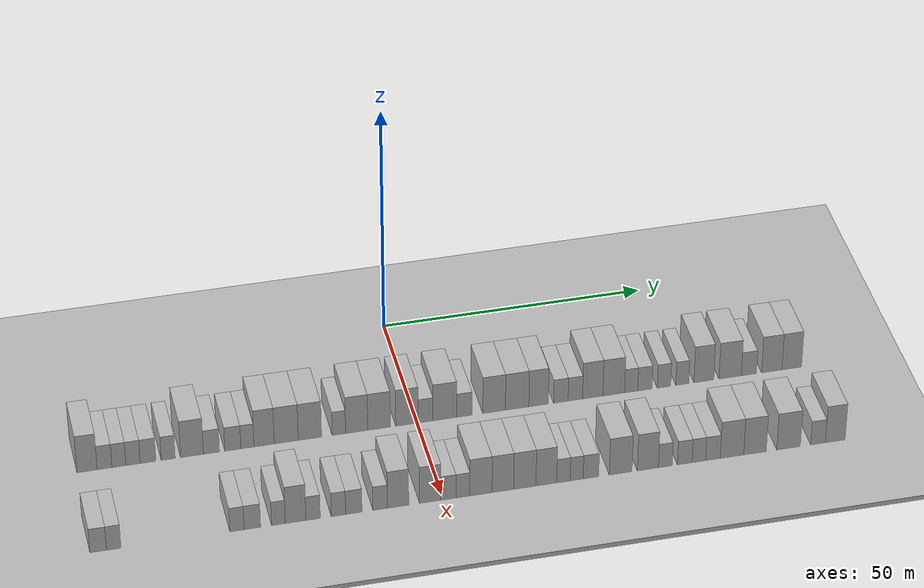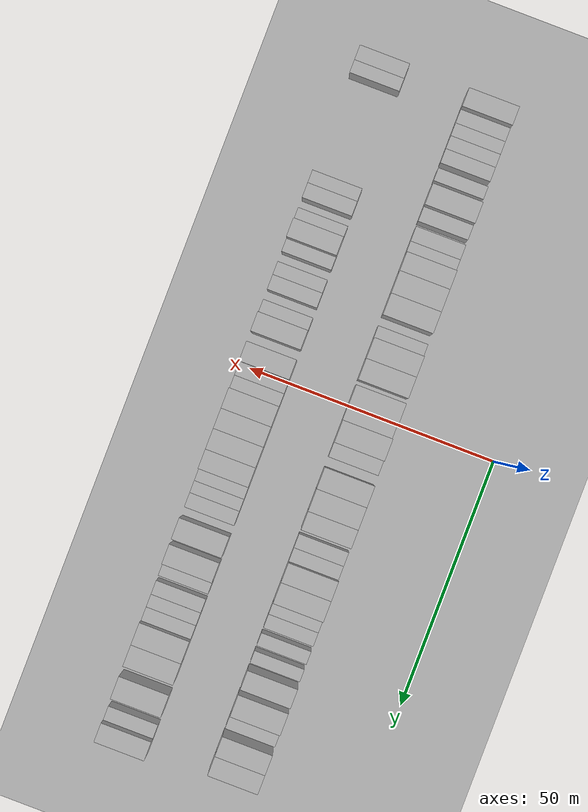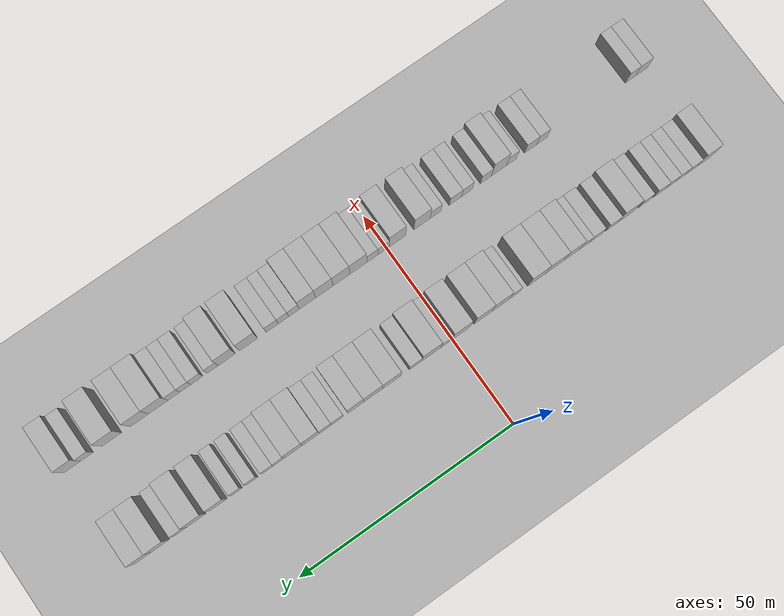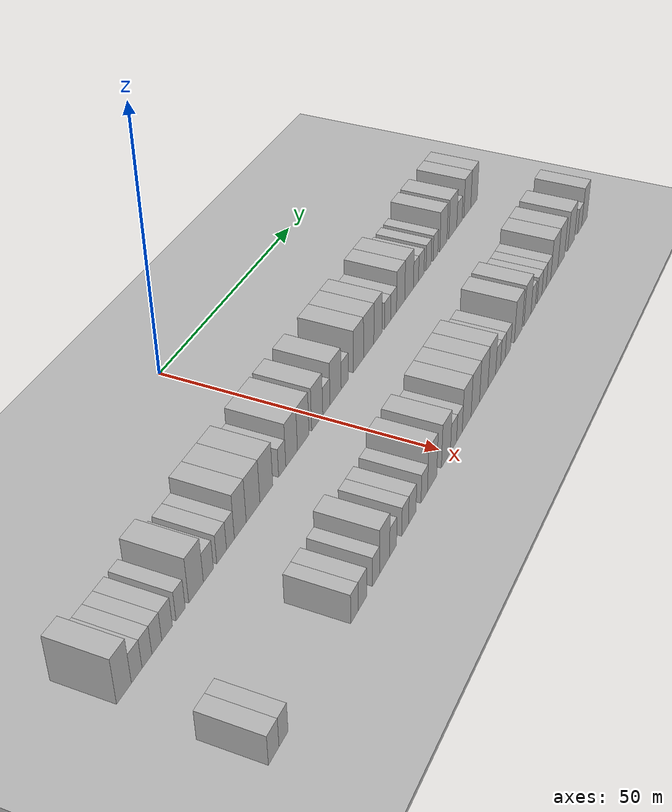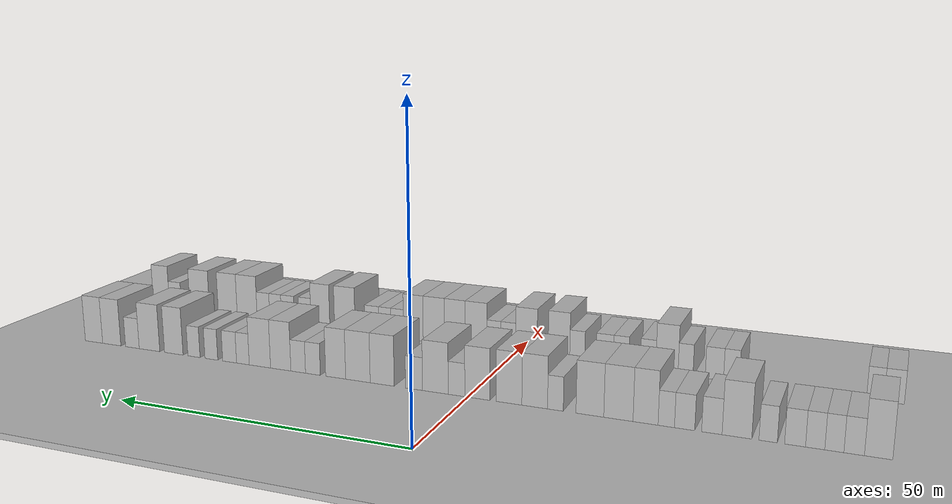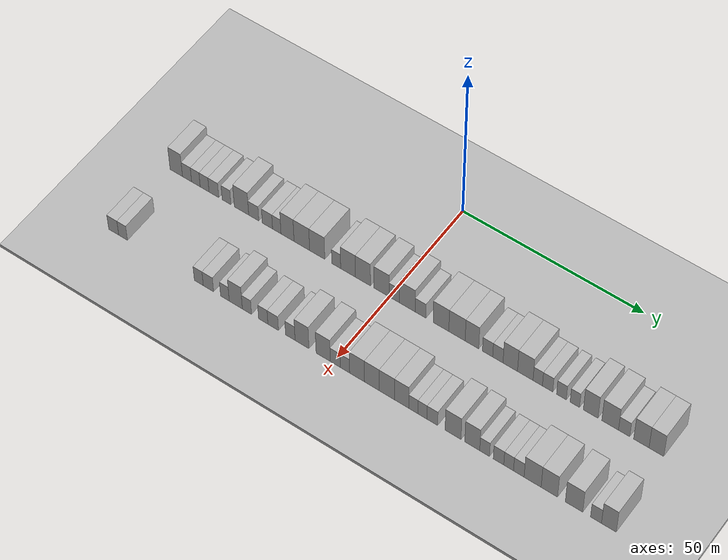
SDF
<sdf version="1.6">
 <world name="default">
  <include><name>ground_plane_1</name><uri>model://HANNAS_ground_plane</uri></include>
  <include>
   <name>ground_plane_2</name>
   <uri>model://HANNAS_ground_plane</uri>
   <pose>100 0 0  0 0 0</pose>
  </include>
  <model name="building_33">
   <static>1</static>
   <pose>25.0000 -61.4327 0 0.000000 0.000000 0.000000</pose>
   <link name="link">
    <pose>0 0 4.50 0 0 0</pose>
    <collision name="collision"><geometry><box><size>10.0000 3.7027 9.0000</size></box></geometry></collision>
    <visual name="visual">
     <cast_shadows>0</cast_shadows>
     <geometry><box><size>10.0000 3.7027 9.0000</size></box></geometry>
     <material>
      <script>
       <uri>model://HANNAS_wall/materials/scripts</uri>
       <uri>model://HANNAS_wall/materials/textures</uri>
       <name>vrc/HANNAS_wall</name>
      </script>
     </material>
    </visual>
   </link>
  </model>
  <model name="building_34">
   <static>1</static>
   <pose>25.0000 -58.2238 0 0.000000 0.000000 0.000000</pose>
   <link name="link">
    <pose>0 0 3.00 0 0 0</pose>
    <collision name="collision"><geometry><box><size>10.0000 2.7151 6.0000</size></box></geometry></collision>
    <visual name="visual">
     <cast_shadows>0</cast_shadows>
     <geometry><box><size>10.0000 2.7151 6.0000</size></box></geometry>
     <material>
      <script>
       <uri>model://HANNAS_wall/materials/scripts</uri>
       <uri>model://HANNAS_wall/materials/textures</uri>
       <name>vrc/HANNAS_wall</name>
      </script>
     </material>
    </visual>
   </link>
  </model>
  <model name="building_35">
   <static>1</static>
   <pose>25.0000 -55.5876 0 0.000000 0.000000 0.000000</pose>
   <link name="link">
    <pose>0 0 3.00 0 0 0</pose>
    <collision name="collision"><geometry><box><size>10.0000 2.5574 6.0000</size></box></geometry></collision>
    <visual name="visual">
     <cast_shadows>0</cast_shadows>
     <geometry><box><size>10.0000 2.5574 6.0000</size></box></geometry>
     <material>
      <script>
       <uri>model://HANNAS_wall/materials/scripts</uri>
       <uri>model://HANNAS_wall/materials/textures</uri>
       <name>vrc/HANNAS_wall</name>
      </script>
     </material>
    </visual>
   </link>
  </model>
  <model name="building_36">
   <static>1</static>
   <pose>25.0000 -53.0013 0 0.000000 0.000000 0.000000</pose>
   <link name="link">
    <pose>0 0 3.00 0 0 0</pose>
    <collision name="collision"><geometry><box><size>10.0000 2.6151 6.0000</size></box></geometry></collision>
    <visual name="visual">
     <cast_shadows>0</cast_shadows>
     <geometry><box><size>10.0000 2.6151 6.0000</size></box></geometry>
     <material>
      <script>
       <uri>model://HANNAS_wall/materials/scripts</uri>
       <uri>model://HANNAS_wall/materials/textures</uri>
       <name>vrc/HANNAS_wall</name>
      </script>
     </material>
    </visual>
   </link>
  </model>
  <model name="building_37">
   <static>1</static>
   <pose>25.0000 -50.2593 0 0.000000 0.000000 0.000000</pose>
   <link name="link">
    <pose>0 0 3.00 0 0 0</pose>
    <collision name="collision"><geometry><box><size>10.0000 2.8688 6.0000</size></box></geometry></collision>
    <visual name="visual">
     <cast_shadows>0</cast_shadows>
     <geometry><box><size>10.0000 2.8688 6.0000</size></box></geometry>
     <material>
      <script>
       <uri>model://HANNAS_wall/materials/scripts</uri>
       <uri>model://HANNAS_wall/materials/textures</uri>
       <name>vrc/HANNAS_wall</name>
      </script>
     </material>
    </visual>
   </link>
  </model>
  <model name="building_38">
   <static>1</static>
   <pose>25.0000 -46.5412 0 0.000000 0.000000 0.000000</pose>
   <link name="link">
    <pose>0 0 3.00 0 0 0</pose>
    <collision name="collision"><geometry><box><size>10.0000 2.5675 6.0000</size></box></geometry></collision>
    <visual name="visual">
     <cast_shadows>0</cast_shadows>
     <geometry><box><size>10.0000 2.5675 6.0000</size></box></geometry>
     <material>
      <script>
       <uri>model://HANNAS_wall/materials/scripts</uri>
       <uri>model://HANNAS_wall/materials/textures</uri>
       <name>vrc/HANNAS_wall</name>
      </script>
     </material>
    </visual>
   </link>
  </model>
  <model name="building_39">
   <static>1</static>
   <pose>25.0000 -42.1483 0 0.000000 0.000000 0.000000</pose>
   <link name="link">
    <pose>0 0 4.50 0 0 0</pose>
    <collision name="collision"><geometry><box><size>10.0000 4.2184 9.0000</size></box></geometry></collision>
    <visual name="visual">
     <cast_shadows>0</cast_shadows>
     <geometry><box><size>10.0000 4.2184 9.0000</size></box></geometry>
     <material>
      <script>
       <uri>model://HANNAS_wall/materials/scripts</uri>
       <uri>model://HANNAS_wall/materials/textures</uri>
       <name>vrc/HANNAS_wall</name>
      </script>
     </material>
    </visual>
   </link>
  </model>
  <model name="building_40">
   <static>1</static>
   <pose>25.0000 -38.5617 0 0.000000 0.000000 0.000000</pose>
   <link name="link">
    <pose>0 0 3.00 0 0 0</pose>
    <collision name="collision"><geometry><box><size>10.0000 2.9548 6.0000</size></box></geometry></collision>
    <visual name="visual">
     <cast_shadows>0</cast_shadows>
     <geometry><box><size>10.0000 2.9548 6.0000</size></box></geometry>
     <material>
      <script>
       <uri>model://HANNAS_wall/materials/scripts</uri>
       <uri>model://HANNAS_wall/materials/textures</uri>
       <name>vrc/HANNAS_wall</name>
      </script>
     </material>
    </visual>
   </link>
  </model>
  <model name="building_41">
   <static>1</static>
   <pose>25.0000 -34.5960 0 0.000000 0.000000 0.000000</pose>
   <link name="link">
    <pose>0 0 3.00 0 0 0</pose>
    <collision name="collision"><geometry><box><size>10.0000 2.9766 6.0000</size></box></geometry></collision>
    <visual name="visual">
     <cast_shadows>0</cast_shadows>
     <geometry><box><size>10.0000 2.9766 6.0000</size></box></geometry>
     <material>
      <script>
       <uri>model://HANNAS_wall/materials/scripts</uri>
       <uri>model://HANNAS_wall/materials/textures</uri>
       <name>vrc/HANNAS_wall</name>
      </script>
     </material>
    </visual>
   </link>
  </model>
  <model name="building_42">
   <static>1</static>
   <pose>25.0000 -31.8885 0 0.000000 0.000000 0.000000</pose>
   <link name="link">
    <pose>0 0 3.00 0 0 0</pose>
    <collision name="collision"><geometry><box><size>10.0000 2.4384 6.0000</size></box></geometry></collision>
    <visual name="visual">
     <cast_shadows>0</cast_shadows>
     <geometry><box><size>10.0000 2.4384 6.0000</size></box></geometry>
     <material>
      <script>
       <uri>model://HANNAS_wall/materials/scripts</uri>
       <uri>model://HANNAS_wall/materials/textures</uri>
       <name>vrc/HANNAS_wall</name>
      </script>
     </material>
    </visual>
   </link>
  </model>
  <model name="building_43">
   <static>1</static>
   <pose>25.0000 -28.7866 0 0.000000 0.000000 0.000000</pose>
   <link name="link">
    <pose>0 0 4.50 0 0 0</pose>
    <collision name="collision"><geometry><box><size>10.0000 3.7654 9.0000</size></box></geometry></collision>
    <visual name="visual">
     <cast_shadows>0</cast_shadows>
     <geometry><box><size>10.0000 3.7654 9.0000</size></box></geometry>
     <material>
      <script>
       <uri>model://HANNAS_wall/materials/scripts</uri>
       <uri>model://HANNAS_wall/materials/textures</uri>
       <name>vrc/HANNAS_wall</name>
      </script>
     </material>
    </visual>
   </link>
  </model>
  <model name="building_44">
   <static>1</static>
   <pose>25.0000 -24.6649 0 0.000000 0.000000 0.000000</pose>
   <link name="link">
    <pose>0 0 4.50 0 0 0</pose>
    <collision name="collision"><geometry><box><size>10.0000 4.4779 9.0000</size></box></geometry></collision>
    <visual name="visual">
     <cast_shadows>0</cast_shadows>
     <geometry><box><size>10.0000 4.4779 9.0000</size></box></geometry>
     <material>
      <script>
       <uri>model://HANNAS_wall/materials/scripts</uri>
       <uri>model://HANNAS_wall/materials/textures</uri>
       <name>vrc/HANNAS_wall</name>
      </script>
     </material>
    </visual>
   </link>
  </model>
  <model name="building_45">
   <static>1</static>
   <pose>25.0000 -20.2596 0 0.000000 0.000000 0.000000</pose>
   <link name="link">
    <pose>0 0 4.50 0 0 0</pose>
    <collision name="collision"><geometry><box><size>10.0000 4.3327 9.0000</size></box></geometry></collision>
    <visual name="visual">
     <cast_shadows>0</cast_shadows>
     <geometry><box><size>10.0000 4.3327 9.0000</size></box></geometry>
     <material>
      <script>
       <uri>model://HANNAS_wall/materials/scripts</uri>
       <uri>model://HANNAS_wall/materials/textures</uri>
       <name>vrc/HANNAS_wall</name>
      </script>
     </material>
    </visual>
   </link>
  </model>
  <model name="building_46">
   <static>1</static>
   <pose>25.0000 -14.8365 0 0.000000 0.000000 0.000000</pose>
   <link name="link">
    <pose>0 0 3.00 0 0 0</pose>
    <collision name="collision"><geometry><box><size>10.0000 2.5137 6.0000</size></box></geometry></collision>
    <visual name="visual">
     <cast_shadows>0</cast_shadows>
     <geometry><box><size>10.0000 2.5137 6.0000</size></box></geometry>
     <material>
      <script>
       <uri>model://HANNAS_wall/materials/scripts</uri>
       <uri>model://HANNAS_wall/materials/textures</uri>
       <name>vrc/HANNAS_wall</name>
      </script>
     </material>
    </visual>
   </link>
  </model>
  <model name="building_47">
   <static>1</static>
   <pose>25.0000 -11.5016 0 0.000000 0.000000 0.000000</pose>
   <link name="link">
    <pose>0 0 4.50 0 0 0</pose>
    <collision name="collision"><geometry><box><size>10.0000 4.1561 9.0000</size></box></geometry></collision>
    <visual name="visual">
     <cast_shadows>0</cast_shadows>
     <geometry><box><size>10.0000 4.1561 9.0000</size></box></geometry>
     <material>
      <script>
       <uri>model://HANNAS_wall/materials/scripts</uri>
       <uri>model://HANNAS_wall/materials/textures</uri>
       <name>vrc/HANNAS_wall</name>
      </script>
     </material>
    </visual>
   </link>
  </model>
  <model name="building_48">
   <static>1</static>
   <pose>25.0000 -7.2964 0 0.000000 0.000000 0.000000</pose>
   <link name="link">
    <pose>0 0 4.50 0 0 0</pose>
    <collision name="collision"><geometry><box><size>10.0000 4.2544 9.0000</size></box></geometry></collision>
    <visual name="visual">
     <cast_shadows>0</cast_shadows>
     <geometry><box><size>10.0000 4.2544 9.0000</size></box></geometry>
     <material>
      <script>
       <uri>model://HANNAS_wall/materials/scripts</uri>
       <uri>model://HANNAS_wall/materials/textures</uri>
       <name>vrc/HANNAS_wall</name>
      </script>
     </material>
    </visual>
   </link>
  </model>
  <model name="building_49">
   <static>1</static>
   <pose>25.0000 -2.0602 0 0.000000 0.000000 0.000000</pose>
   <link name="link">
    <pose>0 0 4.50 0 0 0</pose>
    <collision name="collision"><geometry><box><size>10.0000 4.2179 9.0000</size></box></geometry></collision>
    <visual name="visual">
     <cast_shadows>0</cast_shadows>
     <geometry><box><size>10.0000 4.2179 9.0000</size></box></geometry>
     <material>
      <script>
       <uri>model://HANNAS_wall/materials/scripts</uri>
       <uri>model://HANNAS_wall/materials/textures</uri>
       <name>vrc/HANNAS_wall</name>
      </script>
     </material>
    </visual>
   </link>
  </model>
  <model name="building_50">
   <static>1</static>
   <pose>25.0000 1.4626 0 0.000000 0.000000 0.000000</pose>
   <link name="link">
    <pose>0 0 3.00 0 0 0</pose>
    <collision name="collision"><geometry><box><size>10.0000 2.8276 6.0000</size></box></geometry></collision>
    <visual name="visual">
     <cast_shadows>0</cast_shadows>
     <geometry><box><size>10.0000 2.8276 6.0000</size></box></geometry>
     <material>
      <script>
       <uri>model://HANNAS_wall/materials/scripts</uri>
       <uri>model://HANNAS_wall/materials/textures</uri>
       <name>vrc/HANNAS_wall</name>
      </script>
     </material>
    </visual>
   </link>
  </model>
  <model name="building_51">
   <static>1</static>
   <pose>25.0000 5.0964 0 0.000000 0.000000 0.000000</pose>
   <link name="link">
    <pose>0 0 4.50 0 0 0</pose>
    <collision name="collision"><geometry><box><size>10.0000 4.4400 9.0000</size></box></geometry></collision>
    <visual name="visual">
     <cast_shadows>0</cast_shadows>
     <geometry><box><size>10.0000 4.4400 9.0000</size></box></geometry>
     <material>
      <script>
       <uri>model://HANNAS_wall/materials/scripts</uri>
       <uri>model://HANNAS_wall/materials/textures</uri>
       <name>vrc/HANNAS_wall</name>
      </script>
     </material>
    </visual>
   </link>
  </model>
  <model name="building_52">
   <static>1</static>
   <pose>25.0000 8.7997 0 0.000000 0.000000 0.000000</pose>
   <link name="link">
    <pose>0 0 3.00 0 0 0</pose>
    <collision name="collision"><geometry><box><size>10.0000 2.9665 6.0000</size></box></geometry></collision>
    <visual name="visual">
     <cast_shadows>0</cast_shadows>
     <geometry><box><size>10.0000 2.9665 6.0000</size></box></geometry>
     <material>
      <script>
       <uri>model://HANNAS_wall/materials/scripts</uri>
       <uri>model://HANNAS_wall/materials/textures</uri>
       <name>vrc/HANNAS_wall</name>
      </script>
     </material>
    </visual>
   </link>
  </model>
  <model name="building_53">
   <static>1</static>
   <pose>25.0000 14.4339 0 0.000000 0.000000 0.000000</pose>
   <link name="link">
    <pose>0 0 4.50 0 0 0</pose>
    <collision name="collision"><geometry><box><size>10.0000 4.3020 9.0000</size></box></geometry></collision>
    <visual name="visual">
     <cast_shadows>0</cast_shadows>
     <geometry><box><size>10.0000 4.3020 9.0000</size></box></geometry>
     <material>
      <script>
       <uri>model://HANNAS_wall/materials/scripts</uri>
       <uri>model://HANNAS_wall/materials/textures</uri>
       <name>vrc/HANNAS_wall</name>
      </script>
     </material>
    </visual>
   </link>
  </model>
  <model name="building_54">
   <static>1</static>
   <pose>25.0000 18.8188 0 0.000000 0.000000 0.000000</pose>
   <link name="link">
    <pose>0 0 4.50 0 0 0</pose>
    <collision name="collision"><geometry><box><size>10.0000 4.4679 9.0000</size></box></geometry></collision>
    <visual name="visual">
     <cast_shadows>0</cast_shadows>
     <geometry><box><size>10.0000 4.4679 9.0000</size></box></geometry>
     <material>
      <script>
       <uri>model://HANNAS_wall/materials/scripts</uri>
       <uri>model://HANNAS_wall/materials/textures</uri>
       <name>vrc/HANNAS_wall</name>
      </script>
     </material>
    </visual>
   </link>
  </model>
  <model name="building_55">
   <static>1</static>
   <pose>25.0000 22.9044 0 0.000000 0.000000 0.000000</pose>
   <link name="link">
    <pose>0 0 4.50 0 0 0</pose>
    <collision name="collision"><geometry><box><size>10.0000 3.7032 9.0000</size></box></geometry></collision>
    <visual name="visual">
     <cast_shadows>0</cast_shadows>
     <geometry><box><size>10.0000 3.7032 9.0000</size></box></geometry>
     <material>
      <script>
       <uri>model://HANNAS_wall/materials/scripts</uri>
       <uri>model://HANNAS_wall/materials/textures</uri>
       <name>vrc/HANNAS_wall</name>
      </script>
     </material>
    </visual>
   </link>
  </model>
  <model name="building_56">
   <static>1</static>
   <pose>25.0000 27.1491 0 0.000000 0.000000 0.000000</pose>
   <link name="link">
    <pose>0 0 3.00 0 0 0</pose>
    <collision name="collision"><geometry><box><size>10.0000 2.7863 6.0000</size></box></geometry></collision>
    <visual name="visual">
     <cast_shadows>0</cast_shadows>
     <geometry><box><size>10.0000 2.7863 6.0000</size></box></geometry>
     <material>
      <script>
       <uri>model://HANNAS_wall/materials/scripts</uri>
       <uri>model://HANNAS_wall/materials/textures</uri>
       <name>vrc/HANNAS_wall</name>
      </script>
     </material>
    </visual>
   </link>
  </model>
  <model name="building_57">
   <static>1</static>
   <pose>25.0000 29.9320 0 0.000000 0.000000 0.000000</pose>
   <link name="link">
    <pose>0 0 3.00 0 0 0</pose>
    <collision name="collision"><geometry><box><size>10.0000 2.7795 6.0000</size></box></geometry></collision>
    <visual name="visual">
     <cast_shadows>0</cast_shadows>
     <geometry><box><size>10.0000 2.7795 6.0000</size></box></geometry>
     <material>
      <script>
       <uri>model://HANNAS_wall/materials/scripts</uri>
       <uri>model://HANNAS_wall/materials/textures</uri>
       <name>vrc/HANNAS_wall</name>
      </script>
     </material>
    </visual>
   </link>
  </model>
  <model name="building_58">
   <static>1</static>
   <pose>25.0000 33.2780 0 0.000000 0.000000 0.000000</pose>
   <link name="link">
    <pose>0 0 4.50 0 0 0</pose>
    <collision name="collision"><geometry><box><size>10.0000 3.9124 9.0000</size></box></geometry></collision>
    <visual name="visual">
     <cast_shadows>0</cast_shadows>
     <geometry><box><size>10.0000 3.9124 9.0000</size></box></geometry>
     <material>
      <script>
       <uri>model://HANNAS_wall/materials/scripts</uri>
       <uri>model://HANNAS_wall/materials/textures</uri>
       <name>vrc/HANNAS_wall</name>
      </script>
     </material>
    </visual>
   </link>
  </model>
  <model name="building_59">
   <static>1</static>
   <pose>25.0000 37.3160 0 0.000000 0.000000 0.000000</pose>
   <link name="link">
    <pose>0 0 4.50 0 0 0</pose>
    <collision name="collision"><geometry><box><size>10.0000 4.1636 9.0000</size></box></geometry></collision>
    <visual name="visual">
     <cast_shadows>0</cast_shadows>
     <geometry><box><size>10.0000 4.1636 9.0000</size></box></geometry>
     <material>
      <script>
       <uri>model://HANNAS_wall/materials/scripts</uri>
       <uri>model://HANNAS_wall/materials/textures</uri>
       <name>vrc/HANNAS_wall</name>
      </script>
     </material>
    </visual>
   </link>
  </model>
  <model name="building_60">
   <static>1</static>
   <pose>25.0000 40.6521 0 0.000000 0.000000 0.000000</pose>
   <link name="link">
    <pose>0 0 3.00 0 0 0</pose>
    <collision name="collision"><geometry><box><size>10.0000 2.5086 6.0000</size></box></geometry></collision>
    <visual name="visual">
     <cast_shadows>0</cast_shadows>
     <geometry><box><size>10.0000 2.5086 6.0000</size></box></geometry>
     <material>
      <script>
       <uri>model://HANNAS_wall/materials/scripts</uri>
       <uri>model://HANNAS_wall/materials/textures</uri>
       <name>vrc/HANNAS_wall</name>
      </script>
     </material>
    </visual>
   </link>
  </model>
  <model name="building_61">
   <static>1</static>
   <pose>25.0000 43.2868 0 0.000000 0.000000 0.000000</pose>
   <link name="link">
    <pose>0 0 3.00 0 0 0</pose>
    <collision name="collision"><geometry><box><size>10.0000 2.7609 6.0000</size></box></geometry></collision>
    <visual name="visual">
     <cast_shadows>0</cast_shadows>
     <geometry><box><size>10.0000 2.7609 6.0000</size></box></geometry>
     <material>
      <script>
       <uri>model://HANNAS_wall/materials/scripts</uri>
       <uri>model://HANNAS_wall/materials/textures</uri>
       <name>vrc/HANNAS_wall</name>
      </script>
     </material>
    </visual>
   </link>
  </model>
  <model name="building_62">
   <static>1</static>
   <pose>25.0000 46.9627 0 0.000000 0.000000 0.000000</pose>
   <link name="link">
    <pose>0 0 3.00 0 0 0</pose>
    <collision name="collision"><geometry><box><size>10.0000 2.5908 6.0000</size></box></geometry></collision>
    <visual name="visual">
     <cast_shadows>0</cast_shadows>
     <geometry><box><size>10.0000 2.5908 6.0000</size></box></geometry>
     <material>
      <script>
       <uri>model://HANNAS_wall/materials/scripts</uri>
       <uri>model://HANNAS_wall/materials/textures</uri>
       <name>vrc/HANNAS_wall</name>
      </script>
     </material>
    </visual>
   </link>
  </model>
  <model name="building_63">
   <static>1</static>
   <pose>25.0000 50.5032 0 0.000000 0.000000 0.000000</pose>
   <link name="link">
    <pose>0 0 3.00 0 0 0</pose>
    <collision name="collision"><geometry><box><size>10.0000 2.4901 6.0000</size></box></geometry></collision>
    <visual name="visual">
     <cast_shadows>0</cast_shadows>
     <geometry><box><size>10.0000 2.4901 6.0000</size></box></geometry>
     <material>
      <script>
       <uri>model://HANNAS_wall/materials/scripts</uri>
       <uri>model://HANNAS_wall/materials/textures</uri>
       <name>vrc/HANNAS_wall</name>
      </script>
     </material>
    </visual>
   </link>
  </model>
  <model name="building_64">
   <static>1</static>
   <pose>25.0000 54.6744 0 0.000000 0.000000 0.000000</pose>
   <link name="link">
    <pose>0 0 4.50 0 0 0</pose>
    <collision name="collision"><geometry><box><size>10.0000 3.8524 9.0000</size></box></geometry></collision>
    <visual name="visual">
     <cast_shadows>0</cast_shadows>
     <geometry><box><size>10.0000 3.8524 9.0000</size></box></geometry>
     <material>
      <script>
       <uri>model://HANNAS_wall/materials/scripts</uri>
       <uri>model://HANNAS_wall/materials/textures</uri>
       <name>vrc/HANNAS_wall</name>
      </script>
     </material>
    </visual>
   </link>
  </model>
  <model name="building_65">
   <static>1</static>
   <pose>25.0000 59.7795 0 0.000000 0.000000 0.000000</pose>
   <link name="link">
    <pose>0 0 4.50 0 0 0</pose>
    <collision name="collision"><geometry><box><size>10.0000 4.3577 9.0000</size></box></geometry></collision>
    <visual name="visual">
     <cast_shadows>0</cast_shadows>
     <geometry><box><size>10.0000 4.3577 9.0000</size></box></geometry>
     <material>
      <script>
       <uri>model://HANNAS_wall/materials/scripts</uri>
       <uri>model://HANNAS_wall/materials/textures</uri>
       <name>vrc/HANNAS_wall</name>
      </script>
     </material>
    </visual>
   </link>
  </model>
  <model name="building_66">
   <static>1</static>
   <pose>25.0000 63.4287 0 0.000000 0.000000 0.000000</pose>
   <link name="link">
    <pose>0 0 3.00 0 0 0</pose>
    <collision name="collision"><geometry><box><size>10.0000 2.9407 6.0000</size></box></geometry></collision>
    <visual name="visual">
     <cast_shadows>0</cast_shadows>
     <geometry><box><size>10.0000 2.9407 6.0000</size></box></geometry>
     <material>
      <script>
       <uri>model://HANNAS_wall/materials/scripts</uri>
       <uri>model://HANNAS_wall/materials/textures</uri>
       <name>vrc/HANNAS_wall</name>
      </script>
     </material>
    </visual>
   </link>
  </model>
  <model name="building_67">
   <static>1</static>
   <pose>25.0000 67.8861 0 0.000000 0.000000 0.000000</pose>
   <link name="link">
    <pose>0 0 4.50 0 0 0</pose>
    <collision name="collision"><geometry><box><size>10.0000 3.9743 9.0000</size></box></geometry></collision>
    <visual name="visual">
     <cast_shadows>0</cast_shadows>
     <geometry><box><size>10.0000 3.9743 9.0000</size></box></geometry>
     <material>
      <script>
       <uri>model://HANNAS_wall/materials/scripts</uri>
       <uri>model://HANNAS_wall/materials/textures</uri>
       <name>vrc/HANNAS_wall</name>
      </script>
     </material>
    </visual>
   </link>
  </model>
  <model name="building_68">
   <static>1</static>
   <pose>25.0000 71.7823 0 0.000000 0.000000 0.000000</pose>
   <link name="link">
    <pose>0 0 4.50 0 0 0</pose>
    <collision name="collision"><geometry><box><size>10.0000 3.8181 9.0000</size></box></geometry></collision>
    <visual name="visual">
     <cast_shadows>0</cast_shadows>
     <geometry><box><size>10.0000 3.8181 9.0000</size></box></geometry>
     <material>
      <script>
       <uri>model://HANNAS_wall/materials/scripts</uri>
       <uri>model://HANNAS_wall/materials/textures</uri>
       <name>vrc/HANNAS_wall</name>
      </script>
     </material>
    </visual>
   </link>
  </model>
  <model name="building_140">
   <static>1</static>
   <pose>47.0000 -62.6905 0 0.000000 0.000000 0.000000</pose>
   <link name="link">
    <pose>0 0 3.00 0 0 0</pose>
    <collision name="collision"><geometry><box><size>10.0000 2.9683 6.0000</size></box></geometry></collision>
    <visual name="visual">
     <cast_shadows>0</cast_shadows>
     <geometry><box><size>10.0000 2.9683 6.0000</size></box></geometry>
     <material>
      <script>
       <uri>model://HANNAS_wall/materials/scripts</uri>
       <uri>model://HANNAS_wall/materials/textures</uri>
       <name>vrc/HANNAS_wall</name>
      </script>
     </material>
    </visual>
   </link>
  </model>
  <model name="building_141">
   <static>1</static>
   <pose>47.0000 -59.9137 0 0.000000 0.000000 0.000000</pose>
   <link name="link">
    <pose>0 0 3.00 0 0 0</pose>
    <collision name="collision"><geometry><box><size>10.0000 2.5853 6.0000</size></box></geometry></collision>
    <visual name="visual">
     <cast_shadows>0</cast_shadows>
     <geometry><box><size>10.0000 2.5853 6.0000</size></box></geometry>
     <material>
      <script>
       <uri>model://HANNAS_wall/materials/scripts</uri>
       <uri>model://HANNAS_wall/materials/textures</uri>
       <name>vrc/HANNAS_wall</name>
      </script>
     </material>
    </visual>
   </link>
  </model>
  <model name="building_142">
   <static>1</static>
   <pose>47.0000 -37.7682 0 0.000000 0.000000 0.000000</pose>
   <link name="link">
    <pose>0 0 3.00 0 0 0</pose>
    <collision name="collision"><geometry><box><size>10.0000 2.5685 6.0000</size></box></geometry></collision>
    <visual name="visual">
     <cast_shadows>0</cast_shadows>
     <geometry><box><size>10.0000 2.5685 6.0000</size></box></geometry>
     <material>
      <script>
       <uri>model://HANNAS_wall/materials/scripts</uri>
       <uri>model://HANNAS_wall/materials/textures</uri>
       <name>vrc/HANNAS_wall</name>
      </script>
     </material>
    </visual>
   </link>
  </model>
  <model name="building_143">
   <static>1</static>
   <pose>47.0000 -34.9933 0 0.000000 0.000000 0.000000</pose>
   <link name="link">
    <pose>0 0 3.00 0 0 0</pose>
    <collision name="collision"><geometry><box><size>10.0000 2.9813 6.0000</size></box></geometry></collision>
    <visual name="visual">
     <cast_shadows>0</cast_shadows>
     <geometry><box><size>10.0000 2.9813 6.0000</size></box></geometry>
     <material>
      <script>
       <uri>model://HANNAS_wall/materials/scripts</uri>
       <uri>model://HANNAS_wall/materials/textures</uri>
       <name>vrc/HANNAS_wall</name>
      </script>
     </material>
    </visual>
   </link>
  </model>
  <model name="building_144">
   <static>1</static>
   <pose>47.0000 -30.2642 0 0.000000 0.000000 0.000000</pose>
   <link name="link">
    <pose>0 0 3.00 0 0 0</pose>
    <collision name="collision"><geometry><box><size>10.0000 2.4768 6.0000</size></box></geometry></collision>
    <visual name="visual">
     <cast_shadows>0</cast_shadows>
     <geometry><box><size>10.0000 2.4768 6.0000</size></box></geometry>
     <material>
      <script>
       <uri>model://HANNAS_wall/materials/scripts</uri>
       <uri>model://HANNAS_wall/materials/textures</uri>
       <name>vrc/HANNAS_wall</name>
      </script>
     </material>
    </visual>
   </link>
  </model>
  <model name="building_145">
   <static>1</static>
   <pose>47.0000 -27.1526 0 0.000000 0.000000 0.000000</pose>
   <link name="link">
    <pose>0 0 4.50 0 0 0</pose>
    <collision name="collision"><geometry><box><size>10.0000 3.7464 9.0000</size></box></geometry></collision>
    <visual name="visual">
     <cast_shadows>0</cast_shadows>
     <geometry><box><size>10.0000 3.7464 9.0000</size></box></geometry>
     <material>
      <script>
       <uri>model://HANNAS_wall/materials/scripts</uri>
       <uri>model://HANNAS_wall/materials/textures</uri>
       <name>vrc/HANNAS_wall</name>
      </script>
     </material>
    </visual>
   </link>
  </model>
  <model name="building_146">
   <static>1</static>
   <pose>47.0000 -23.9708 0 0.000000 0.000000 0.000000</pose>
   <link name="link">
    <pose>0 0 3.00 0 0 0</pose>
    <collision name="collision"><geometry><box><size>10.0000 2.6172 6.0000</size></box></geometry></collision>
    <visual name="visual">
     <cast_shadows>0</cast_shadows>
     <geometry><box><size>10.0000 2.6172 6.0000</size></box></geometry>
     <material>
      <script>
       <uri>model://HANNAS_wall/materials/scripts</uri>
       <uri>model://HANNAS_wall/materials/textures</uri>
       <name>vrc/HANNAS_wall</name>
      </script>
     </material>
    </visual>
   </link>
  </model>
  <model name="building_147">
   <static>1</static>
   <pose>47.0000 -19.3474 0 0.000000 0.000000 0.000000</pose>
   <link name="link">
    <pose>0 0 3.00 0 0 0</pose>
    <collision name="collision"><geometry><box><size>10.0000 2.6298 6.0000</size></box></geometry></collision>
    <visual name="visual">
     <cast_shadows>0</cast_shadows>
     <geometry><box><size>10.0000 2.6298 6.0000</size></box></geometry>
     <material>
      <script>
       <uri>model://HANNAS_wall/materials/scripts</uri>
       <uri>model://HANNAS_wall/materials/textures</uri>
       <name>vrc/HANNAS_wall</name>
      </script>
     </material>
    </visual>
   </link>
  </model>
  <model name="building_148">
   <static>1</static>
   <pose>47.0000 -16.5390 0 0.000000 0.000000 0.000000</pose>
   <link name="link">
    <pose>0 0 3.00 0 0 0</pose>
    <collision name="collision"><geometry><box><size>10.0000 2.9870 6.0000</size></box></geometry></collision>
    <visual name="visual">
     <cast_shadows>0</cast_shadows>
     <geometry><box><size>10.0000 2.9870 6.0000</size></box></geometry>
     <material>
      <script>
       <uri>model://HANNAS_wall/materials/scripts</uri>
       <uri>model://HANNAS_wall/materials/textures</uri>
       <name>vrc/HANNAS_wall</name>
      </script>
     </material>
    </visual>
   </link>
  </model>
  <model name="building_149">
   <static>1</static>
   <pose>47.0000 -11.7114 0 0.000000 0.000000 0.000000</pose>
   <link name="link">
    <pose>0 0 3.00 0 0 0</pose>
    <collision name="collision"><geometry><box><size>10.0000 2.6681 6.0000</size></box></geometry></collision>
    <visual name="visual">
     <cast_shadows>0</cast_shadows>
     <geometry><box><size>10.0000 2.6681 6.0000</size></box></geometry>
     <material>
      <script>
       <uri>model://HANNAS_wall/materials/scripts</uri>
       <uri>model://HANNAS_wall/materials/textures</uri>
       <name>vrc/HANNAS_wall</name>
      </script>
     </material>
    </visual>
   </link>
  </model>
  <model name="building_150">
   <static>1</static>
   <pose>47.0000 -8.4365 0 0.000000 0.000000 0.000000</pose>
   <link name="link">
    <pose>0 0 4.50 0 0 0</pose>
    <collision name="collision"><geometry><box><size>10.0000 3.8819 9.0000</size></box></geometry></collision>
    <visual name="visual">
     <cast_shadows>0</cast_shadows>
     <geometry><box><size>10.0000 3.8819 9.0000</size></box></geometry>
     <material>
      <script>
       <uri>model://HANNAS_wall/materials/scripts</uri>
       <uri>model://HANNAS_wall/materials/textures</uri>
       <name>vrc/HANNAS_wall</name>
      </script>
     </material>
    </visual>
   </link>
  </model>
  <model name="building_151">
   <static>1</static>
   <pose>47.0000 -2.5181 0 0.000000 0.000000 0.000000</pose>
   <link name="link">
    <pose>0 0 4.50 0 0 0</pose>
    <collision name="collision"><geometry><box><size>10.0000 3.9549 9.0000</size></box></geometry></collision>
    <visual name="visual">
     <cast_shadows>0</cast_shadows>
     <geometry><box><size>10.0000 3.9549 9.0000</size></box></geometry>
     <material>
      <script>
       <uri>model://HANNAS_wall/materials/scripts</uri>
       <uri>model://HANNAS_wall/materials/textures</uri>
       <name>vrc/HANNAS_wall</name>
      </script>
     </material>
    </visual>
   </link>
  </model>
  <model name="building_152">
   <static>1</static>
   <pose>47.0000 0.8325 0 0.000000 0.000000 0.000000</pose>
   <link name="link">
    <pose>0 0 3.00 0 0 0</pose>
    <collision name="collision"><geometry><box><size>10.0000 2.7463 6.0000</size></box></geometry></collision>
    <visual name="visual">
     <cast_shadows>0</cast_shadows>
     <geometry><box><size>10.0000 2.7463 6.0000</size></box></geometry>
     <material>
      <script>
       <uri>model://HANNAS_wall/materials/scripts</uri>
       <uri>model://HANNAS_wall/materials/textures</uri>
       <name>vrc/HANNAS_wall</name>
      </script>
     </material>
    </visual>
   </link>
  </model>
  <model name="building_153">
   <static>1</static>
   <pose>47.0000 3.4926 0 0.000000 0.000000 0.000000</pose>
   <link name="link">
    <pose>0 0 3.00 0 0 0</pose>
    <collision name="collision"><geometry><box><size>10.0000 2.5740 6.0000</size></box></geometry></collision>
    <visual name="visual">
     <cast_shadows>0</cast_shadows>
     <geometry><box><size>10.0000 2.5740 6.0000</size></box></geometry>
     <material>
      <script>
       <uri>model://HANNAS_wall/materials/scripts</uri>
       <uri>model://HANNAS_wall/materials/textures</uri>
       <name>vrc/HANNAS_wall</name>
      </script>
     </material>
    </visual>
   </link>
  </model>
  <model name="building_154">
   <static>1</static>
   <pose>47.0000 6.8253 0 0.000000 0.000000 0.000000</pose>
   <link name="link">
    <pose>0 0 4.50 0 0 0</pose>
    <collision name="collision"><geometry><box><size>10.0000 4.0913 9.0000</size></box></geometry></collision>
    <visual name="visual">
     <cast_shadows>0</cast_shadows>
     <geometry><box><size>10.0000 4.0913 9.0000</size></box></geometry>
     <material>
      <script>
       <uri>model://HANNAS_wall/materials/scripts</uri>
       <uri>model://HANNAS_wall/materials/textures</uri>
       <name>vrc/HANNAS_wall</name>
      </script>
     </material>
    </visual>
   </link>
  </model>
  <model name="building_155">
   <static>1</static>
   <pose>47.0000 10.8881 0 0.000000 0.000000 0.000000</pose>
   <link name="link">
    <pose>0 0 4.50 0 0 0</pose>
    <collision name="collision"><geometry><box><size>10.0000 4.0343 9.0000</size></box></geometry></collision>
    <visual name="visual">
     <cast_shadows>0</cast_shadows>
     <geometry><box><size>10.0000 4.0343 9.0000</size></box></geometry>
     <material>
      <script>
       <uri>model://HANNAS_wall/materials/scripts</uri>
       <uri>model://HANNAS_wall/materials/textures</uri>
       <name>vrc/HANNAS_wall</name>
      </script>
     </material>
    </visual>
   </link>
  </model>
  <model name="building_156">
   <static>1</static>
   <pose>47.0000 14.9645 0 0.000000 0.000000 0.000000</pose>
   <link name="link">
    <pose>0 0 4.50 0 0 0</pose>
    <collision name="collision"><geometry><box><size>10.0000 4.1184 9.0000</size></box></geometry></collision>
    <visual name="visual">
     <cast_shadows>0</cast_shadows>
     <geometry><box><size>10.0000 4.1184 9.0000</size></box></geometry>
     <material>
      <script>
       <uri>model://HANNAS_wall/materials/scripts</uri>
       <uri>model://HANNAS_wall/materials/textures</uri>
       <name>vrc/HANNAS_wall</name>
      </script>
     </material>
    </visual>
   </link>
  </model>
  <model name="building_157">
   <static>1</static>
   <pose>47.0000 18.9631 0 0.000000 0.000000 0.000000</pose>
   <link name="link">
    <pose>0 0 4.50 0 0 0</pose>
    <collision name="collision"><geometry><box><size>10.0000 3.8788 9.0000</size></box></geometry></collision>
    <visual name="visual">
     <cast_shadows>0</cast_shadows>
     <geometry><box><size>10.0000 3.8788 9.0000</size></box></geometry>
     <material>
      <script>
       <uri>model://HANNAS_wall/materials/scripts</uri>
       <uri>model://HANNAS_wall/materials/textures</uri>
       <name>vrc/HANNAS_wall</name>
      </script>
     </material>
    </visual>
   </link>
  </model>
  <model name="building_158">
   <static>1</static>
   <pose>47.0000 22.1569 0 0.000000 0.000000 0.000000</pose>
   <link name="link">
    <pose>0 0 3.00 0 0 0</pose>
    <collision name="collision"><geometry><box><size>10.0000 2.5089 6.0000</size></box></geometry></collision>
    <visual name="visual">
     <cast_shadows>0</cast_shadows>
     <geometry><box><size>10.0000 2.5089 6.0000</size></box></geometry>
     <material>
      <script>
       <uri>model://HANNAS_wall/materials/scripts</uri>
       <uri>model://HANNAS_wall/materials/textures</uri>
       <name>vrc/HANNAS_wall</name>
      </script>
     </material>
    </visual>
   </link>
  </model>
  <model name="building_159">
   <static>1</static>
   <pose>47.0000 24.6205 0 0.000000 0.000000 0.000000</pose>
   <link name="link">
    <pose>0 0 3.00 0 0 0</pose>
    <collision name="collision"><geometry><box><size>10.0000 2.4182 6.0000</size></box></geometry></collision>
    <visual name="visual">
     <cast_shadows>0</cast_shadows>
     <geometry><box><size>10.0000 2.4182 6.0000</size></box></geometry>
     <material>
      <script>
       <uri>model://HANNAS_wall/materials/scripts</uri>
       <uri>model://HANNAS_wall/materials/textures</uri>
       <name>vrc/HANNAS_wall</name>
      </script>
     </material>
    </visual>
   </link>
  </model>
  <model name="building_160">
   <static>1</static>
   <pose>47.0000 27.2688 0 0.000000 0.000000 0.000000</pose>
   <link name="link">
    <pose>0 0 3.00 0 0 0</pose>
    <collision name="collision"><geometry><box><size>10.0000 2.8785 6.0000</size></box></geometry></collision>
    <visual name="visual">
     <cast_shadows>0</cast_shadows>
     <geometry><box><size>10.0000 2.8785 6.0000</size></box></geometry>
     <material>
      <script>
       <uri>model://HANNAS_wall/materials/scripts</uri>
       <uri>model://HANNAS_wall/materials/textures</uri>
       <name>vrc/HANNAS_wall</name>
      </script>
     </material>
    </visual>
   </link>
  </model>
  <model name="building_161">
   <static>1</static>
   <pose>47.0000 32.8315 0 0.000000 0.000000 0.000000</pose>
   <link name="link">
    <pose>0 0 4.50 0 0 0</pose>
    <collision name="collision"><geometry><box><size>10.0000 4.2469 9.0000</size></box></geometry></collision>
    <visual name="visual">
     <cast_shadows>0</cast_shadows>
     <geometry><box><size>10.0000 4.2469 9.0000</size></box></geometry>
     <material>
      <script>
       <uri>model://HANNAS_wall/materials/scripts</uri>
       <uri>model://HANNAS_wall/materials/textures</uri>
       <name>vrc/HANNAS_wall</name>
      </script>
     </material>
    </visual>
   </link>
  </model>
  <model name="building_162">
   <static>1</static>
   <pose>47.0000 37.9369 0 0.000000 0.000000 0.000000</pose>
   <link name="link">
    <pose>0 0 4.50 0 0 0</pose>
    <collision name="collision"><geometry><box><size>10.0000 3.9639 9.0000</size></box></geometry></collision>
    <visual name="visual">
     <cast_shadows>0</cast_shadows>
     <geometry><box><size>10.0000 3.9639 9.0000</size></box></geometry>
     <material>
      <script>
       <uri>model://HANNAS_wall/materials/scripts</uri>
       <uri>model://HANNAS_wall/materials/textures</uri>
       <name>vrc/HANNAS_wall</name>
      </script>
     </material>
    </visual>
   </link>
  </model>
  <model name="building_163">
   <static>1</static>
   <pose>47.0000 41.2089 0 0.000000 0.000000 0.000000</pose>
   <link name="link">
    <pose>0 0 3.00 0 0 0</pose>
    <collision name="collision"><geometry><box><size>10.0000 2.5802 6.0000</size></box></geometry></collision>
    <visual name="visual">
     <cast_shadows>0</cast_shadows>
     <geometry><box><size>10.0000 2.5802 6.0000</size></box></geometry>
     <material>
      <script>
       <uri>model://HANNAS_wall/materials/scripts</uri>
       <uri>model://HANNAS_wall/materials/textures</uri>
       <name>vrc/HANNAS_wall</name>
      </script>
     </material>
    </visual>
   </link>
  </model>
  <model name="building_164">
   <static>1</static>
   <pose>47.0000 44.8860 0 0.000000 0.000000 0.000000</pose>
   <link name="link">
    <pose>0 0 3.00 0 0 0</pose>
    <collision name="collision"><geometry><box><size>10.0000 2.7740 6.0000</size></box></geometry></collision>
    <visual name="visual">
     <cast_shadows>0</cast_shadows>
     <geometry><box><size>10.0000 2.7740 6.0000</size></box></geometry>
     <material>
      <script>
       <uri>model://HANNAS_wall/materials/scripts</uri>
       <uri>model://HANNAS_wall/materials/textures</uri>
       <name>vrc/HANNAS_wall</name>
      </script>
     </material>
    </visual>
   </link>
  </model>
  <model name="building_165">
   <static>1</static>
   <pose>47.0000 47.5464 0 0.000000 0.000000 0.000000</pose>
   <link name="link">
    <pose>0 0 3.00 0 0 0</pose>
    <collision name="collision"><geometry><box><size>10.0000 2.5467 6.0000</size></box></geometry></collision>
    <visual name="visual">
     <cast_shadows>0</cast_shadows>
     <geometry><box><size>10.0000 2.5467 6.0000</size></box></geometry>
     <material>
      <script>
       <uri>model://HANNAS_wall/materials/scripts</uri>
       <uri>model://HANNAS_wall/materials/textures</uri>
       <name>vrc/HANNAS_wall</name>
      </script>
     </material>
    </visual>
   </link>
  </model>
  <model name="building_166">
   <static>1</static>
   <pose>47.0000 50.2058 0 0.000000 0.000000 0.000000</pose>
   <link name="link">
    <pose>0 0 3.00 0 0 0</pose>
    <collision name="collision"><geometry><box><size>10.0000 2.7721 6.0000</size></box></geometry></collision>
    <visual name="visual">
     <cast_shadows>0</cast_shadows>
     <geometry><box><size>10.0000 2.7721 6.0000</size></box></geometry>
     <material>
      <script>
       <uri>model://HANNAS_wall/materials/scripts</uri>
       <uri>model://HANNAS_wall/materials/textures</uri>
       <name>vrc/HANNAS_wall</name>
      </script>
     </material>
    </visual>
   </link>
  </model>
  <model name="building_167">
   <static>1</static>
   <pose>47.0000 53.8085 0 0.000000 0.000000 0.000000</pose>
   <link name="link">
    <pose>0 0 4.50 0 0 0</pose>
    <collision name="collision"><geometry><box><size>10.0000 4.4332 9.0000</size></box></geometry></collision>
    <visual name="visual">
     <cast_shadows>0</cast_shadows>
     <geometry><box><size>10.0000 4.4332 9.0000</size></box></geometry>
     <material>
      <script>
       <uri>model://HANNAS_wall/materials/scripts</uri>
       <uri>model://HANNAS_wall/materials/textures</uri>
       <name>vrc/HANNAS_wall</name>
      </script>
     </material>
    </visual>
   </link>
  </model>
  <model name="building_168">
   <static>1</static>
   <pose>47.0000 58.1557 0 0.000000 0.000000 0.000000</pose>
   <link name="link">
    <pose>0 0 4.50 0 0 0</pose>
    <collision name="collision"><geometry><box><size>10.0000 4.2612 9.0000</size></box></geometry></collision>
    <visual name="visual">
     <cast_shadows>0</cast_shadows>
     <geometry><box><size>10.0000 4.2612 9.0000</size></box></geometry>
     <material>
      <script>
       <uri>model://HANNAS_wall/materials/scripts</uri>
       <uri>model://HANNAS_wall/materials/textures</uri>
       <name>vrc/HANNAS_wall</name>
      </script>
     </material>
    </visual>
   </link>
  </model>
  <model name="building_169">
   <static>1</static>
   <pose>47.0000 64.5300 0 0.000000 0.000000 0.000000</pose>
   <link name="link">
    <pose>0 0 4.50 0 0 0</pose>
    <collision name="collision"><geometry><box><size>10.0000 4.4873 9.0000</size></box></geometry></collision>
    <visual name="visual">
     <cast_shadows>0</cast_shadows>
     <geometry><box><size>10.0000 4.4873 9.0000</size></box></geometry>
     <material>
      <script>
       <uri>model://HANNAS_wall/materials/scripts</uri>
       <uri>model://HANNAS_wall/materials/textures</uri>
       <name>vrc/HANNAS_wall</name>
      </script>
     </material>
    </visual>
   </link>
  </model>
  <model name="building_170">
   <static>1</static>
   <pose>47.0000 70.1690 0 0.000000 0.000000 0.000000</pose>
   <link name="link">
    <pose>0 0 3.00 0 0 0</pose>
    <collision name="collision"><geometry><box><size>10.0000 2.7906 6.0000</size></box></geometry></collision>
    <visual name="visual">
     <cast_shadows>0</cast_shadows>
     <geometry><box><size>10.0000 2.7906 6.0000</size></box></geometry>
     <material>
      <script>
       <uri>model://HANNAS_wall/materials/scripts</uri>
       <uri>model://HANNAS_wall/materials/textures</uri>
       <name>vrc/HANNAS_wall</name>
      </script>
     </material>
    </visual>
   </link>
  </model>
  <model name="building_171">
   <static>1</static>
   <pose>47.0000 73.4507 0 0.000000 0.000000 0.000000</pose>
   <link name="link">
    <pose>0 0 4.50 0 0 0</pose>
    <collision name="collision"><geometry><box><size>10.0000 3.7727 9.0000</size></box></geometry></collision>
    <visual name="visual">
     <cast_shadows>0</cast_shadows>
     <geometry><box><size>10.0000 3.7727 9.0000</size></box></geometry>
     <material>
      <script>
       <uri>model://HANNAS_wall/materials/scripts</uri>
       <uri>model://HANNAS_wall/materials/textures</uri>
       <name>vrc/HANNAS_wall</name>
      </script>
     </material>
    </visual>
   </link>
  </model>
 </world>
</sdf>
